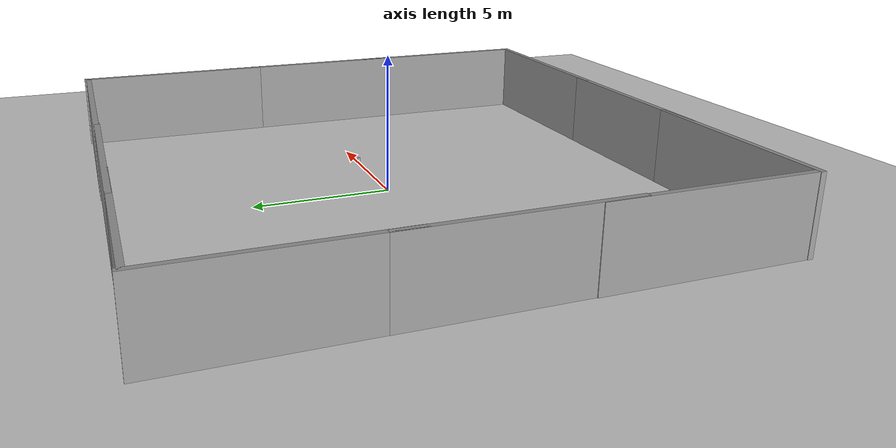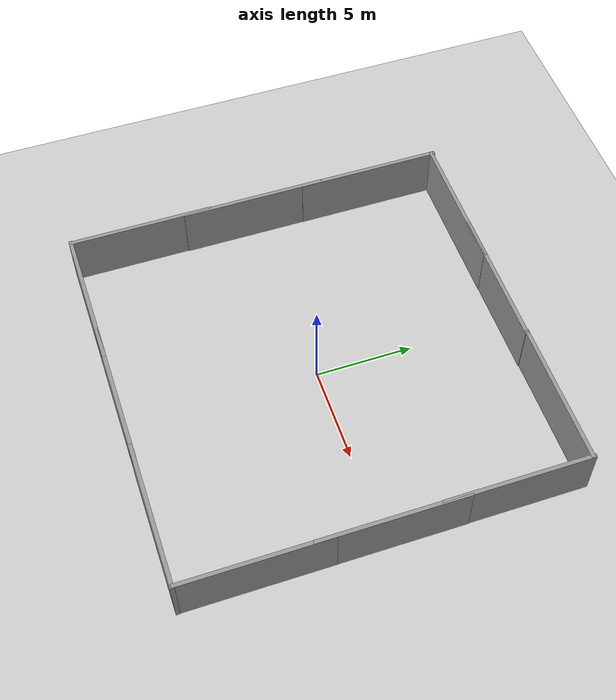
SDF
<sdf version="1.7">
 <world name="enpm673">
  <scene><ambient>0.4 0.4 0.4 1</ambient><background>0.7 0.7 0.7 1</background><shadows>0</shadows></scene>
  <model name="ground_plane">
   <static>1</static>
   <link name="link">
    <collision name="collision">
     <geometry><plane><normal>0 0 1</normal><size>100 100</size></plane></geometry>
     <surface><friction><ode><mu>100</mu><mu2>50</mu2></ode></friction></surface>
    </collision>
    <visual name="visual">
     <cast_shadows>0</cast_shadows>
     <geometry><plane><normal>0 0 1</normal><size>100 100</size></plane></geometry>
     <material>
      <script><uri>file://media/materials/scripts/gazebo.material</uri><name>Gazebo/Grey</name></script>
     </material>
    </visual>
   </link>
  </model>
  <light name="sun" type="directional">
   <pose>0 0 10 0 -0 0</pose>
   <diffuse>0.8 0.8 0.8 1</diffuse>
   <specular>0.2 0.2 0.2 1</specular>
   <attenuation>
    <range>1000</range>
    <constant>0.9</constant>
    <linear>0.01</linear>
    <quadratic>0.001</quadratic>
   </attenuation>
   <direction>-0.5 0.1 -0.9</direction>
   <spot><inner_angle>0</inner_angle><outer_angle>0</outer_angle><falloff>0</falloff></spot>
  </light>
  <light name="user_point_light_0" type="point">
   <pose>1.76686 5.87302 1 0 -0 0</pose>
   <diffuse>0.5 0.5 0.5 1</diffuse>
   <specular>0.1 0.1 0.1 1</specular>
   <attenuation>
    <range>20</range>
    <constant>0.5</constant>
    <linear>0.01</linear>
    <quadratic>0.001</quadratic>
   </attenuation>
   <cast_shadows>0</cast_shadows>
   <direction>0 0 -1</direction>
   <spot><inner_angle>0</inner_angle><outer_angle>0</outer_angle><falloff>0</falloff></spot>
  </light>
  <model name="floor"/>
  <model name="track"><pose>0 0 0.01 0 -0 0</pose></model>
  <model name="turtlebot"><pose>0.8 -0.5 0.0005 0 -0 1.57</pose></model>
  <model name="beer">
   <pose>3.40783 -0 -2e-05 0 -0 -0.108657</pose>
   <frame name="beer::__model__" attached_to="beer::link">
    <pose relative_to="__model__">0 0 0 0 -0 0</pose>
   </frame>
   <link name="beer::link">
    <pose relative_to="beer::__model__">0 0 0.115 0 -0 0</pose>
    <inertial>
     <mass>0.39</mass>
     <inertia><ixx>0.00058</ixx><ixy>0</ixy><ixz>0</ixz><iyy>0.00058</iyy><iyz>0</iyz><izz>0.00019</izz></inertia>
    </inertial>
    <collision name="collision">
     <geometry><cylinder><radius>0.055</radius><length>0.23</length></cylinder></geometry>
    </collision>
    <visual name="visual">
     <geometry><cylinder><radius>0.055</radius><length>0.23</length></cylinder></geometry>
     <material>
      <script>
       <uri>model://beer/materials/scripts</uri>
       <uri>model://beer/materials/textures</uri>
       <name>Beer/Diffuse</name>
      </script>
     </material>
    </visual>
   </link>
   <plugin name="animated_box" filename="libanimated_box.so">
    <trajectory>
     <waypoint><time>0</time><pose>-1 0 0 0 0 0</pose></waypoint>
     <waypoint><time>10</time><pose>-7 0 0 0 0 -7</pose></waypoint>
     <waypoint><time>30</time><pose>7 0 0 0 0 -7</pose></waypoint>
     <waypoint><time>40</time><pose>-1 0 0 0 0 0</pose></waypoint>
    </trajectory>
   </plugin>
  </model>
  <model name="wall1">
   <frame name="grey_wall::__model__" attached_to="grey_wall::link">
    <pose relative_to="__model__">0 0 0 0 -0 0</pose>
   </frame>
   <static>1</static>
   <link name="grey_wall::link">
    <pose relative_to="grey_wall::__model__">0 0 1.4 0 -0 0</pose>
    <collision name="collision"><geometry><box><size>7.5 0.2 2.8</size></box></geometry></collision>
    <visual name="visual">
     <cast_shadows>0</cast_shadows>
     <geometry><box><size>7.5 0.2 2.8</size></box></geometry>
     <material>
      <script>
       <uri>model://grey_wall/materials/scripts</uri>
       <uri>model://grey_wall/materials/textures</uri>
       <name>vrc/grey_wall</name>
      </script>
     </material>
    </visual>
   </link>
   <pose>6.28137 9.84843 0 0 -0 0</pose>
  </model>
  <model name="wall2">
   <frame name="grey_wall::__model__" attached_to="grey_wall::link">
    <pose relative_to="__model__">0 0 0 0 -0 0</pose>
   </frame>
   <static>1</static>
   <link name="grey_wall::link">
    <pose relative_to="grey_wall::__model__">0 0 1.4 0 -0 0</pose>
    <collision name="collision"><geometry><box><size>7.5 0.2 2.8</size></box></geometry></collision>
    <visual name="visual">
     <cast_shadows>0</cast_shadows>
     <geometry><box><size>7.5 0.2 2.8</size></box></geometry>
     <material>
      <script>
       <uri>model://grey_wall/materials/scripts</uri>
       <uri>model://grey_wall/materials/textures</uri>
       <name>vrc/grey_wall</name>
      </script>
     </material>
    </visual>
   </link>
   <pose>9.98464 0.212281 0 0 -0 1.57</pose>
  </model>
  <model name="wall6">
   <frame name="grey_wall::__model__" attached_to="grey_wall::link">
    <pose relative_to="__model__">0 0 0 0 -0 0</pose>
   </frame>
   <static>1</static>
   <link name="grey_wall::link">
    <pose relative_to="grey_wall::__model__">0 0 1.4 0 -0 0</pose>
    <collision name="collision"><geometry><box><size>7.5 0.2 2.8</size></box></geometry></collision>
    <visual name="visual">
     <cast_shadows>0</cast_shadows>
     <geometry><box><size>7.5 0.2 2.8</size></box></geometry>
     <material>
      <script>
       <uri>model://grey_wall/materials/scripts</uri>
       <uri>model://grey_wall/materials/textures</uri>
       <name>vrc/grey_wall</name>
      </script>
     </material>
    </visual>
   </link>
   <pose>6.3539 -9.90019 0 0 -0 0</pose>
  </model>
  <gravity>0 0 -9.8</gravity>
  <magnetic_field>6e-06 2.3e-05 -4.2e-05</magnetic_field>
  <atmosphere type="adiabatic"/>
  <physics type="ode">
   <max_step_size>0.001</max_step_size>
   <real_time_factor>1</real_time_factor>
   <real_time_update_rate>1000</real_time_update_rate>
  </physics>
  <audio><device>default</device></audio>
  <spherical_coordinates>
   <surface_model>EARTH_WGS84</surface_model>
   <latitude_deg>0</latitude_deg>
   <longitude_deg>0</longitude_deg>
   <elevation>0</elevation>
   <heading_deg>0</heading_deg>
  </spherical_coordinates>
  <model name="wall2_clone">
   <frame name="grey_wall::__model__" attached_to="grey_wall::link">
    <pose relative_to="__model__">0 0 0 0 -0 0</pose>
   </frame>
   <static>1</static>
   <link name="grey_wall::link">
    <pose relative_to="grey_wall::__model__">0 0 1.4 0 -0 0</pose>
    <collision name="collision"><geometry><box><size>7.5 0.2 2.8</size></box></geometry></collision>
    <visual name="visual">
     <cast_shadows>0</cast_shadows>
     <geometry><box><size>7.5 0.2 2.8</size></box></geometry>
     <material>
      <script>
       <uri>model://grey_wall/materials/scripts</uri>
       <uri>model://grey_wall/materials/textures</uri>
       <name>vrc/grey_wall</name>
      </script>
     </material>
    </visual>
   </link>
   <pose>9.98838 -6.19139 0 0 -0 1.57</pose>
  </model>
  <model name="wall2_clone_0">
   <frame name="grey_wall::__model__" attached_to="grey_wall::link">
    <pose relative_to="__model__">0 0 0 0 -0 0</pose>
   </frame>
   <static>1</static>
   <link name="grey_wall::link">
    <pose relative_to="grey_wall::__model__">0 0 1.4 0 -0 0</pose>
    <collision name="collision"><geometry><box><size>7.5 0.2 2.8</size></box></geometry></collision>
    <visual name="visual">
     <cast_shadows>0</cast_shadows>
     <geometry><box><size>7.5 0.2 2.8</size></box></geometry>
     <material>
      <script>
       <uri>model://grey_wall/materials/scripts</uri>
       <uri>model://grey_wall/materials/textures</uri>
       <name>vrc/grey_wall</name>
      </script>
     </material>
    </visual>
   </link>
   <pose>9.97041 6.25684 0 0 -0 1.57</pose>
  </model>
  <model name="wall2_clone_1">
   <frame name="grey_wall::__model__" attached_to="grey_wall::link">
    <pose relative_to="__model__">0 0 0 0 -0 0</pose>
   </frame>
   <static>1</static>
   <link name="grey_wall::link">
    <pose relative_to="grey_wall::__model__">0 0 1.4 0 -0 0</pose>
    <collision name="collision"><geometry><box><size>7.5 0.2 2.8</size></box></geometry></collision>
    <visual name="visual">
     <cast_shadows>0</cast_shadows>
     <geometry><box><size>7.5 0.2 2.8</size></box></geometry>
     <material>
      <script>
       <uri>model://grey_wall/materials/scripts</uri>
       <uri>model://grey_wall/materials/textures</uri>
       <name>vrc/grey_wall</name>
      </script>
     </material>
    </visual>
   </link>
   <pose>-9.82962 -0.191591 0 0 -0 1.57</pose>
  </model>
  <model name="wall2_clone_1_clone">
   <frame name="grey_wall::__model__" attached_to="grey_wall::link">
    <pose relative_to="__model__">0 0 0 0 -0 0</pose>
   </frame>
   <static>1</static>
   <link name="grey_wall::link">
    <pose relative_to="grey_wall::__model__">0 0 1.4 0 -0 0</pose>
    <collision name="collision"><geometry><box><size>7.5 0.2 2.8</size></box></geometry></collision>
    <visual name="visual">
     <cast_shadows>0</cast_shadows>
     <geometry><box><size>7.5 0.2 2.8</size></box></geometry>
     <material>
      <script>
       <uri>model://grey_wall/materials/scripts</uri>
       <uri>model://grey_wall/materials/textures</uri>
       <name>vrc/grey_wall</name>
      </script>
     </material>
    </visual>
   </link>
   <pose>-9.8131 6.23017 0 0 -0 1.57</pose>
  </model>
  <model name="wall2_clone_1_clone_0">
   <frame name="grey_wall::__model__" attached_to="grey_wall::link">
    <pose relative_to="__model__">0 0 0 0 -0 0</pose>
   </frame>
   <static>1</static>
   <link name="grey_wall::link">
    <pose relative_to="grey_wall::__model__">0 0 1.4 0 -0 0</pose>
    <collision name="collision"><geometry><box><size>7.5 0.2 2.8</size></box></geometry></collision>
    <visual name="visual">
     <cast_shadows>0</cast_shadows>
     <geometry><box><size>7.5 0.2 2.8</size></box></geometry>
     <material>
      <script>
       <uri>model://grey_wall/materials/scripts</uri>
       <uri>model://grey_wall/materials/textures</uri>
       <name>vrc/grey_wall</name>
      </script>
     </material>
    </visual>
   </link>
   <pose>-9.87029 -6.2359 0 0 -0 1.57</pose>
  </model>
  <model name="wall6_clone">
   <frame name="grey_wall::__model__" attached_to="grey_wall::link">
    <pose relative_to="__model__">0 0 0 0 -0 0</pose>
   </frame>
   <static>1</static>
   <link name="grey_wall::link">
    <pose relative_to="grey_wall::__model__">0 0 1.4 0 -0 0</pose>
    <collision name="collision"><geometry><box><size>7.5 0.2 2.8</size></box></geometry></collision>
    <visual name="visual">
     <cast_shadows>0</cast_shadows>
     <geometry><box><size>7.5 0.2 2.8</size></box></geometry>
     <material>
      <script>
       <uri>model://grey_wall/materials/scripts</uri>
       <uri>model://grey_wall/materials/textures</uri>
       <name>vrc/grey_wall</name>
      </script>
     </material>
    </visual>
   </link>
   <pose>-0.496745 -9.88919 0 0 -0 0</pose>
  </model>
  <model name="wall6_clone_0">
   <frame name="grey_wall::__model__" attached_to="grey_wall::link">
    <pose relative_to="__model__">0 0 0 0 -0 0</pose>
   </frame>
   <static>1</static>
   <link name="grey_wall::link">
    <pose relative_to="grey_wall::__model__">0 0 1.4 0 -0 0</pose>
    <collision name="collision"><geometry><box><size>7.5 0.2 2.8</size></box></geometry></collision>
    <visual name="visual">
     <cast_shadows>0</cast_shadows>
     <geometry><box><size>7.5 0.2 2.8</size></box></geometry>
     <material>
      <script>
       <uri>model://grey_wall/materials/scripts</uri>
       <uri>model://grey_wall/materials/textures</uri>
       <name>vrc/grey_wall</name>
      </script>
     </material>
    </visual>
   </link>
   <pose>-6.24237 -9.88271 0 0 -0 0</pose>
  </model>
  <model name="wall1_clone">
   <frame name="grey_wall::__model__" attached_to="grey_wall::link">
    <pose relative_to="__model__">0 0 0 0 -0 0</pose>
   </frame>
   <static>1</static>
   <link name="grey_wall::link">
    <pose relative_to="grey_wall::__model__">0 0 1.4 0 -0 0</pose>
    <collision name="collision"><geometry><box><size>7.5 0.2 2.8</size></box></geometry></collision>
    <visual name="visual">
     <cast_shadows>0</cast_shadows>
     <geometry><box><size>7.5 0.2 2.8</size></box></geometry>
     <material>
      <script>
       <uri>model://grey_wall/materials/scripts</uri>
       <uri>model://grey_wall/materials/textures</uri>
       <name>vrc/grey_wall</name>
      </script>
     </material>
    </visual>
   </link>
   <pose>-1.00227 9.81525 0 0 -0 0</pose>
  </model>
  <model name="wall1_clone_0">
   <frame name="grey_wall::__model__" attached_to="grey_wall::link">
    <pose relative_to="__model__">0 0 0 0 -0 0</pose>
   </frame>
   <static>1</static>
   <link name="grey_wall::link">
    <pose relative_to="grey_wall::__model__">0 0 1.4 0 -0 0</pose>
    <collision name="collision"><geometry><box><size>7.5 0.2 2.8</size></box></geometry></collision>
    <visual name="visual">
     <cast_shadows>0</cast_shadows>
     <geometry><box><size>7.5 0.2 2.8</size></box></geometry>
     <material>
      <script>
       <uri>model://grey_wall/materials/scripts</uri>
       <uri>model://grey_wall/materials/textures</uri>
       <name>vrc/grey_wall</name>
      </script>
     </material>
    </visual>
   </link>
   <pose>-6.13017 9.80216 0 0 -0 0</pose>
  </model>
 </world>
</sdf>
